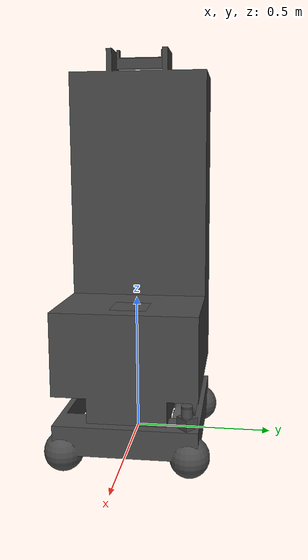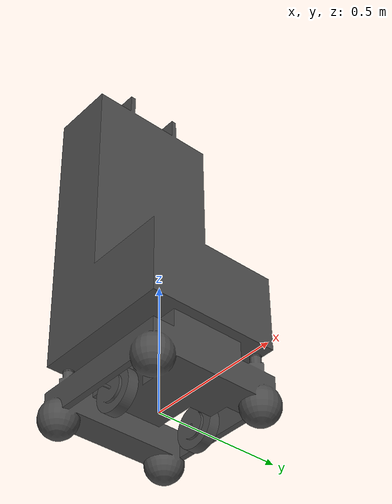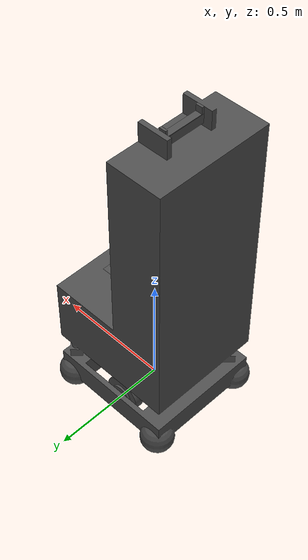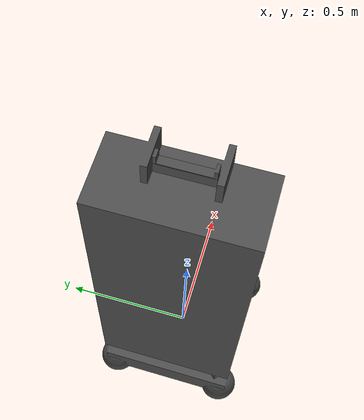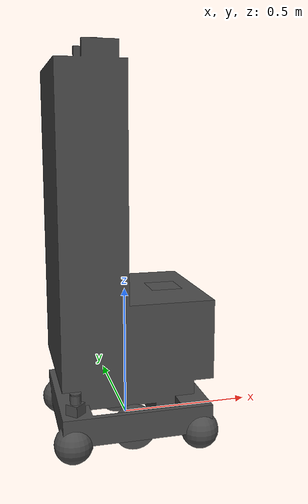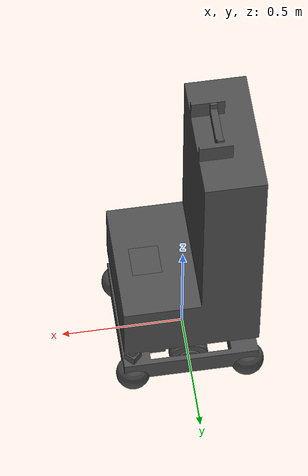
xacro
<?xml version="1.0" ?>
<robot name="walkie3" xmlns:xacro="http://www.ros.org/wiki/xacro">

<xacro:include filename="$(find walkie3_description)/urdf/materials.xacro" />
<xacro:include filename="$(find walkie3_description)/urdf/walkie3.trans" />
<xacro:include filename="$(find walkie3_description)/urdf/walkie3.gazebo" />

<link name="base_link">
  <visual>
    <origin xyz="0 0 0" rpy="0 0 0"/>
    <geometry>
      <mesh filename="package://walkie3_description/meshes/base_link_5cm.stl" scale="0.001 0.001 0.001"/>
    </geometry>
    <material name="black"/>
  </visual>
  <collision>
    <origin xyz="0 0 0" rpy="0 0 0"/>
    <geometry>
      <mesh filename="package://walkie3_description/meshes/base_link_5cm.stl" scale="0.001 0.001 0.001"/>
    </geometry>
  </collision>
</link>

<link name="r_motor">
  <inertial>
    <origin xyz="-2.6062051822206556e-15 0.029600000000000043 1.734723475976807e-18" rpy="0 0 0"/>
    <mass value="1.2840689772481653"/>
    <inertia ixx="0.002126" iyy="0.003732" izz="0.002126" ixy="-0.0" iyz="0.0" ixz="0.0"/>
  </inertial>
  <visual>
    <origin xyz="0.0015 0.1968 -0.012" rpy="0 0 0"/>
    <geometry>
      <mesh filename="package://walkie3_description/meshes/rm_1.stl" scale="0.001 0.001 0.001"/>
    </geometry>
    <material name="black"/>
  </visual>
  <collision>
    <origin xyz="0.0015 0.1968 -0.012" rpy="0 0 0"/>
    <geometry>
      <mesh filename="package://walkie3_description/meshes/rm_1.stl" scale="0.001 0.001 0.001"/>
    </geometry>
  </collision>
</link>

<link name="l_motor">
  <inertial>
    <origin xyz="-2.6062051822206556e-15 -0.029600000000000043 1.734723475976807e-18" rpy="0 0 0"/>
    <mass value="1.2840689772481653"/>
    <inertia ixx="0.002126" iyy="0.003732" izz="0.002126" ixy="-0.0" iyz="-0.0" ixz="-0.0"/>
  </inertial>
  <visual>
    <origin xyz="0.0015 -0.1968 -0.012" rpy="0 0 0"/>
    <geometry>
      <mesh filename="package://walkie3_description/meshes/lm_1.stl" scale="0.001 0.001 0.001"/>
    </geometry>
    <material name="black"/>
  </visual>
  <collision>
    <origin xyz="0.0015 -0.1968 -0.012" rpy="0 0 0"/>
    <geometry>
      <mesh filename="package://walkie3_description/meshes/lm_1.stl" scale="0.001 0.001 0.001"/>
    </geometry>
  </collision>
</link>

<link name="front_lidar">
  <inertial>
    <origin xyz="0.0 -1.322960035965437e-08 0.0025000000000000022" rpy="0 0 0"/>
    <mass value="0.0493230046613599"/>
    <inertia ixx="5e-06" iyy="5e-06" izz="1e-05" ixy="0.0" iyz="0.0" ixz="0.0"/>
  </inertial>
  <visual>
    <origin xyz="-0.2345 -0.210318 -0.1775" rpy="0 0 0"/>
    <geometry>
      <mesh filename="package://walkie3_description/meshes/front_lidar_1.stl" scale="0.001 0.001 0.001"/>
    </geometry>
    <material name="black"/>
  </visual>
  <collision>
    <origin xyz="-0.2345 -0.210318 -0.1775" rpy="0 0 0"/>
    <geometry>
      <mesh filename="package://walkie3_description/meshes/front_lidar_1.stl" scale="0.001 0.001 0.001"/>
    </geometry>
  </collision>
</link>

<link name="back_lidar">
  <inertial>
    <origin xyz="2.488404678147038e-07 2.488404678424594e-07 0.0025000000000000577" rpy="0 0 0"/>
    <mass value="0.04932300466135975"/>
    <inertia ixx="5e-06" iyy="5e-06" izz="1e-05" ixy="0.0" iyz="-0.0" ixz="-0.0"/>
  </inertial>
  <visual>
    <origin xyz="0.223042 0.199542 -0.1775" rpy="0 0 0"/>
    <geometry>
      <mesh filename="package://walkie3_description/meshes/back_lidar_1.stl" scale="0.001 0.001 0.001"/>
    </geometry>
    <material name="black"/>
  </visual>
  <collision>
    <origin xyz="0.223042 0.199542 -0.1775" rpy="0 0 0"/>
    <geometry>
      <mesh filename="package://walkie3_description/meshes/back_lidar_1.stl" scale="0.001 0.001 0.001"/>
    </geometry>
  </collision>
</link>

<link name="lift">
  <inertial>
    <origin xyz="-0.0595 -7.19910242530375e-17 -0.22049999999999992" rpy="0 0 0"/>
    <mass value="9.197469540000002"/>
    <inertia ixx="0.161423" iyy="0.159915" izz="0.023216" ixy="0.0" iyz="0.0" ixz="0.0"/>
  </inertial>
  <visual>
    <origin xyz="-0.2135 -0.0045 -0.5015" rpy="0 0 0"/>
    <geometry>
      <mesh filename="package://walkie3_description/meshes/lift_1.stl" scale="0.001 0.001 0.001"/>
    </geometry>
    <material name="black"/>
  </visual>
  <collision>
    <origin xyz="-0.2135 -0.0045 -0.5015" rpy="0 0 0"/>
    <geometry>
      <mesh filename="package://walkie3_description/meshes/lift_1.stl" scale="0.001 0.001 0.001"/>
    </geometry>
  </collision>
</link>

<link name="camera_servo">
  <inertial>
    <origin xyz="0.0009771735426644251 0.08953172714997108 -2.220446049250313e-16" rpy="0 0 0"/>
    <mass value="0.23417405554980755"/>
    <inertia ixx="0.001135" iyy="3.5e-05" izz="0.001141" ixy="-0.0" iyz="-0.0" ixz="0.0"/>
  </inertial>
  <visual>
    <origin xyz="0.1215 0.09 -1.389" rpy="0 0 0"/>
    <geometry>
      <mesh filename="package://walkie3_description/meshes/camera_case_1.stl" scale="0.001 0.001 0.001"/>
    </geometry>
    <material name="black"/>
  </visual>
  <collision>
    <origin xyz="0.1215 0.09 -1.389" rpy="0 0 0"/>
    <geometry>
      <mesh filename="package://walkie3_description/meshes/camera_case_1.stl" scale="0.001 0.001 0.001"/>
    </geometry>
  </collision>
</link>

<link name="camera_case">
  <inertial>
    <origin xyz="0.018649000000000054 2.498531024240378e-17 -0.013862999999999959" rpy="0 0 0"/>
    <mass value="1.428746199196806"/>
    <inertia ixx="0.00378" iyy="0.000257" izz="0.003854" ixy="0.0" iyz="0.0" ixz="0.0"/>
  </inertial>
  <visual>
    <origin xyz="0.111391 -0.0 -1.402863" rpy="0 0 0"/>
    <geometry>
      <mesh filename="package://walkie3_description/meshes/zed2i_1.stl" scale="0.001 0.001 0.001"/>
    </geometry>
    <material name="black"/>
  </visual>
  <collision>
    <origin xyz="0.111391 -0.0 -1.402863" rpy="0 0 0"/>
    <geometry>
      <mesh filename="package://walkie3_description/meshes/zed2i_1.stl" scale="0.001 0.001 0.001"/>
    </geometry>
  </collision>
</link>

<joint name="r_motor_joint" type="continuous">
  <origin xyz="-0.0015 -0.1968 0.012" rpy="0 0 0"/>
  <parent link="base_link"/>
  <child link="r_motor"/>
  <axis xyz="0.0 -1.0 0.0"/>
</joint>

<joint name="l_motor_joint" type="continuous">
  <origin xyz="-0.0015 0.1968 0.012" rpy="0 0 0"/>
  <parent link="base_link"/>
  <child link="l_motor"/>
  <axis xyz="-0.0 -1.0 0.0"/>
</joint>

<joint name="Rigid_3" type="fixed">
  <origin xyz="0.2345 0.210318 0.1775" rpy="0 0 0.785"/>
  <parent link="base_link"/>
  <child link="front_lidar"/>
</joint>

<joint name="Rigid_4" type="fixed">
  <origin xyz="-0.223042 -0.199542 0.1775" rpy="0 0 -2.356"/>
  <parent link="base_link"/>
  <child link="back_lidar"/>
</joint>

<joint name="lift_joint" type="prismatic">
  <origin xyz="0.2135 0.0045 0.5015" rpy="0 0 0"/>
  <parent link="base_link"/>
  <child link="lift"/>
  <axis xyz="0.0 0.0 1.0"/>
  <limit upper="0.245" lower="0.0" effort="100" velocity="100"/>
</joint>

<joint name="camera_servo_joint" type="continuous">
  <origin xyz="-0.1215 -0.09 1.389" rpy="0 1.57 0"/>
  <parent link="base_link"/>
  <child link="camera_servo"/>
  <axis xyz="0.0 1.0 0.0"/>
</joint>

<joint name="Rigid_7" type="fixed">
  <origin xyz="0.010109 0.09 0.013863" rpy="0 0 0"/>
  <parent link="camera_servo"/>
  <child link="camera_case"/>
</joint>

</robot>

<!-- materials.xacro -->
<robot name="walkie3" xmlns:xacro="http://www.ros.org/wiki/xacro" >

<material name="black">
  <color rgba="0.3 0.3 0.3 1.000"/>
</material>

</robot>

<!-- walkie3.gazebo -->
<robot name="walkie3" xmlns:xacro="http://www.ros.org/wiki/xacro" >

<xacro:property name="body_color" value="Gazebo/Silver" />

<gazebo>
  <plugin name="control" filename="libgazebo_ros_control.so"/>
</gazebo>
<gazebo reference="base_link">
  <material>${body_color}</material>
  <mu1>0.2</mu1>
  <mu2>0.2</mu2>
  <selfCollide>true</selfCollide>
  <gravity>true</gravity>
</gazebo>

<gazebo reference="rm_1">
  <material>${body_color}</material>
  <mu1>0.2</mu1>
  <mu2>0.2</mu2>
  <selfCollide>true</selfCollide>
</gazebo>

<gazebo reference="lm_1">
  <material>${body_color}</material>
  <mu1>0.2</mu1>
  <mu2>0.2</mu2>
  <selfCollide>true</selfCollide>
</gazebo>

<gazebo reference="front_lidar_1">
  <material>${body_color}</material>
  <mu1>0.2</mu1>
  <mu2>0.2</mu2>
  <selfCollide>true</selfCollide>
</gazebo>

<gazebo reference="back_lidar_1">
  <material>${body_color}</material>
  <mu1>0.2</mu1>
  <mu2>0.2</mu2>
  <selfCollide>true</selfCollide>
</gazebo>

<gazebo reference="lift_1">
  <material>${body_color}</material>
  <mu1>0.2</mu1>
  <mu2>0.2</mu2>
  <selfCollide>true</selfCollide>
</gazebo>

<gazebo reference="camera_case_1">
  <material>${body_color}</material>
  <mu1>0.2</mu1>
  <mu2>0.2</mu2>
  <selfCollide>true</selfCollide>
</gazebo>

<gazebo reference="zed2i_1">
  <material>${body_color}</material>
  <mu1>0.2</mu1>
  <mu2>0.2</mu2>
  <selfCollide>true</selfCollide>
</gazebo>

</robot>
